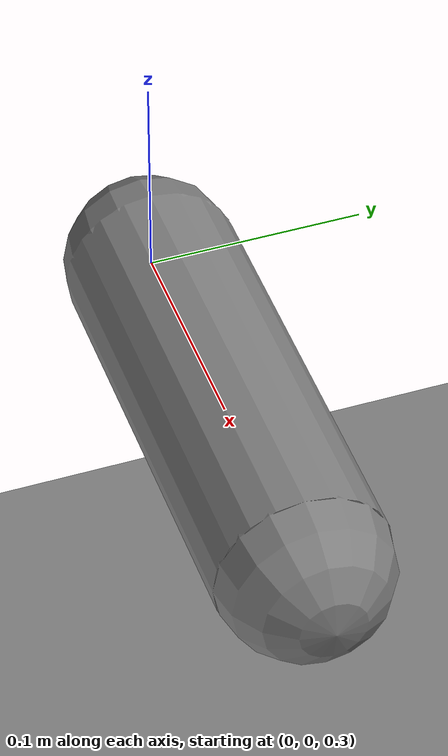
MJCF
<!-- SPDX-FileCopyrightText: Copyright (c) 2026 NVIDIA CORPORATION & AFFILIATES. All rights reserved. -->
<!-- SPDX-License-Identifier: Apache-2.0 -->
<!-- Smallest scene with a mesh-free geom, a joint and a light: enough to exercise the
     parser and the visualizer without shipping assets. -->
<mujoco>
  <worldbody>
    <light pos="0 0 2"/>
    <geom type="plane" size="1 1 .1"/>
    <body pos="0 0 .3">
      <joint type="hinge" axis="0 1 0"/>
      <geom type="capsule" size=".04" fromto="0 0 0 .2 0 0"/>
    </body>
  </worldbody>
</mujoco>
